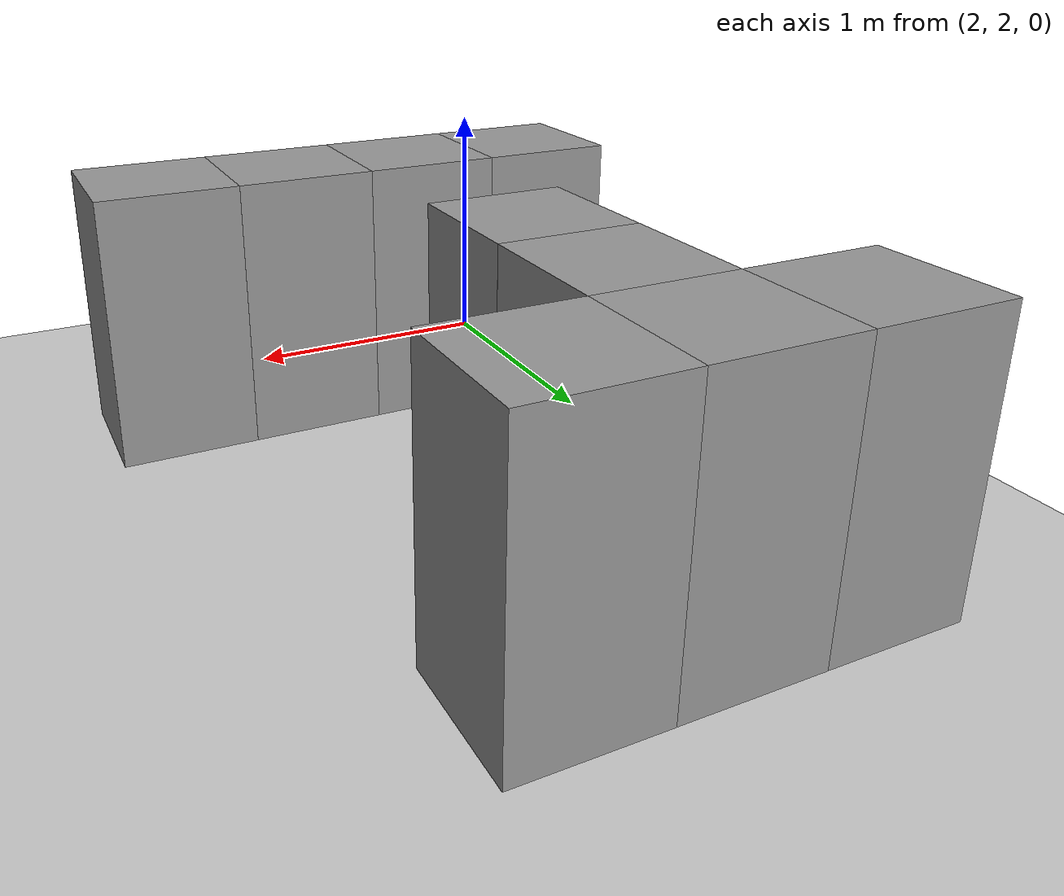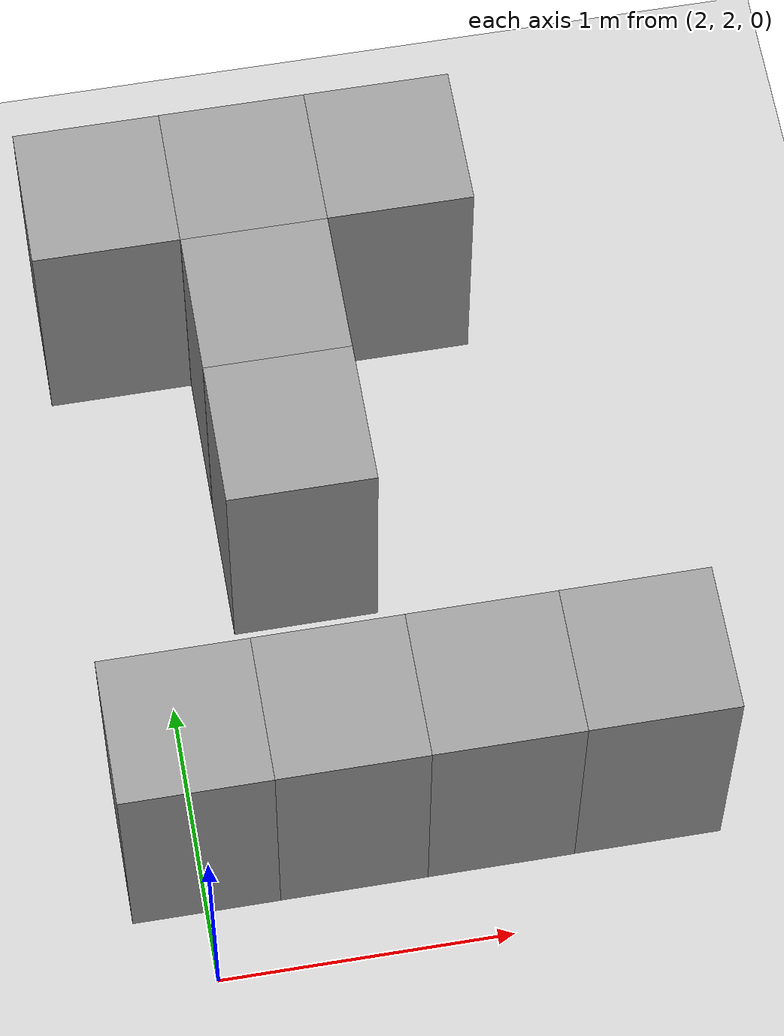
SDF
<sdf version="1.7">
 <world name="default">
  <model name="ground_plane">
   <static>1</static>
   <link name="link">
    <collision name="collision">
     <geometry><plane><normal>0 0 1</normal><size>100 100</size></plane></geometry>
     <surface>
      <contact><collide_bitmask>65535</collide_bitmask></contact>
      <friction><ode><mu>100</mu><mu2>50</mu2></ode></friction>
     </surface>
    </collision>
    <visual name="visual">
     <cast_shadows>0</cast_shadows>
     <geometry><plane><normal>0 0 1</normal><size>100 100</size></plane></geometry>
     <material>
      <script><uri>file://media/materials/scripts/gazebo.material</uri><name>Gazebo/Grey</name></script>
     </material>
    </visual>
   </link>
  </model>
  <model name="unit_box_42">
   <pose>2.0 2.5 0.5 0 -1e-05 -0.000818</pose>
   <link name="link">
    <inertial>
     <mass>1</mass>
     <inertia>
      <ixx>0.166667</ixx>
      <ixy>0</ixy>
      <ixz>0</ixz>
      <iyy>0.166667</iyy>
      <iyz>0</iyz>
      <izz>0.166667</izz>
     </inertia>
    </inertial>
    <collision name="collision"><geometry><box><size>0.5 0.5 1</size></box></geometry></collision>
    <visual name="visual">
     <geometry><box><size>0.5 0.5 1</size></box></geometry>
     <material>
      <script><name>Gazebo/Grey</name><uri>file://media/materials/scripts/gazebo.material</uri></script>
     </material>
    </visual>
   </link>
  </model>
  <model name="unit_box_43">
   <pose>2.5 2.5 0.5 0 -1e-05 -0.000818</pose>
   <link name="link">
    <inertial>
     <mass>1</mass>
     <inertia>
      <ixx>0.166667</ixx>
      <ixy>0</ixy>
      <ixz>0</ixz>
      <iyy>0.166667</iyy>
      <iyz>0</iyz>
      <izz>0.166667</izz>
     </inertia>
    </inertial>
    <collision name="collision"><geometry><box><size>0.5 0.5 1</size></box></geometry></collision>
    <visual name="visual">
     <geometry><box><size>0.5 0.5 1</size></box></geometry>
     <material>
      <script><name>Gazebo/Grey</name><uri>file://media/materials/scripts/gazebo.material</uri></script>
     </material>
    </visual>
   </link>
  </model>
  <model name="unit_box_44">
   <pose>3.0 2.5 0.5 0 -1e-05 -0.000818</pose>
   <link name="link">
    <inertial>
     <mass>1</mass>
     <inertia>
      <ixx>0.166667</ixx>
      <ixy>0</ixy>
      <ixz>0</ixz>
      <iyy>0.166667</iyy>
      <iyz>0</iyz>
      <izz>0.166667</izz>
     </inertia>
    </inertial>
    <collision name="collision"><geometry><box><size>0.5 0.5 1</size></box></geometry></collision>
    <visual name="visual">
     <geometry><box><size>0.5 0.5 1</size></box></geometry>
     <material>
      <script><name>Gazebo/Grey</name><uri>file://media/materials/scripts/gazebo.material</uri></script>
     </material>
    </visual>
   </link>
  </model>
  <model name="unit_box_45">
   <pose>3.5 2.5 0.5 0 -1e-05 -0.000818</pose>
   <link name="link">
    <inertial>
     <mass>1</mass>
     <inertia>
      <ixx>0.166667</ixx>
      <ixy>0</ixy>
      <ixz>0</ixz>
      <iyy>0.166667</iyy>
      <iyz>0</iyz>
      <izz>0.166667</izz>
     </inertia>
    </inertial>
    <collision name="collision"><geometry><box><size>0.5 0.5 1</size></box></geometry></collision>
    <visual name="visual">
     <geometry><box><size>0.5 0.5 1</size></box></geometry>
     <material>
      <script><name>Gazebo/Grey</name><uri>file://media/materials/scripts/gazebo.material</uri></script>
     </material>
    </visual>
   </link>
  </model>
  <model name="unit_box_55">
   <pose>2.5 3.5 0.5 0 -1e-05 -0.000818</pose>
   <link name="link">
    <inertial>
     <mass>1</mass>
     <inertia>
      <ixx>0.166667</ixx>
      <ixy>0</ixy>
      <ixz>0</ixz>
      <iyy>0.166667</iyy>
      <iyz>0</iyz>
      <izz>0.166667</izz>
     </inertia>
    </inertial>
    <collision name="collision"><geometry><box><size>0.5 0.5 1</size></box></geometry></collision>
    <visual name="visual">
     <geometry><box><size>0.5 0.5 1</size></box></geometry>
     <material>
      <script><name>Gazebo/Grey</name><uri>file://media/materials/scripts/gazebo.material</uri></script>
     </material>
    </visual>
   </link>
  </model>
  <model name="unit_box_59">
   <pose>2.5 4.0 0.5 0 -1e-05 -0.000818</pose>
   <link name="link">
    <inertial>
     <mass>1</mass>
     <inertia>
      <ixx>0.166667</ixx>
      <ixy>0</ixy>
      <ixz>0</ixz>
      <iyy>0.166667</iyy>
      <iyz>0</iyz>
      <izz>0.166667</izz>
     </inertia>
    </inertial>
    <collision name="collision"><geometry><box><size>0.5 0.5 1</size></box></geometry></collision>
    <visual name="visual">
     <geometry><box><size>0.5 0.5 1</size></box></geometry>
     <material>
      <script><name>Gazebo/Grey</name><uri>file://media/materials/scripts/gazebo.material</uri></script>
     </material>
    </visual>
   </link>
  </model>
  <model name="unit_box_66">
   <pose>2.0 4.5 0.5 0 -1e-05 -0.000818</pose>
   <link name="link">
    <inertial>
     <mass>1</mass>
     <inertia>
      <ixx>0.166667</ixx>
      <ixy>0</ixy>
      <ixz>0</ixz>
      <iyy>0.166667</iyy>
      <iyz>0</iyz>
      <izz>0.166667</izz>
     </inertia>
    </inertial>
    <collision name="collision"><geometry><box><size>0.5 0.5 1</size></box></geometry></collision>
    <visual name="visual">
     <geometry><box><size>0.5 0.5 1</size></box></geometry>
     <material>
      <script><name>Gazebo/Grey</name><uri>file://media/materials/scripts/gazebo.material</uri></script>
     </material>
    </visual>
   </link>
  </model>
  <model name="unit_box_67">
   <pose>2.5 4.5 0.5 0 -1e-05 -0.000818</pose>
   <link name="link">
    <inertial>
     <mass>1</mass>
     <inertia>
      <ixx>0.166667</ixx>
      <ixy>0</ixy>
      <ixz>0</ixz>
      <iyy>0.166667</iyy>
      <iyz>0</iyz>
      <izz>0.166667</izz>
     </inertia>
    </inertial>
    <collision name="collision"><geometry><box><size>0.5 0.5 1</size></box></geometry></collision>
    <visual name="visual">
     <geometry><box><size>0.5 0.5 1</size></box></geometry>
     <material>
      <script><name>Gazebo/Grey</name><uri>file://media/materials/scripts/gazebo.material</uri></script>
     </material>
    </visual>
   </link>
  </model>
  <model name="unit_box_68">
   <pose>3.0 4.5 0.5 0 -1e-05 -0.000818</pose>
   <link name="link">
    <inertial>
     <mass>1</mass>
     <inertia>
      <ixx>0.166667</ixx>
      <ixy>0</ixy>
      <ixz>0</ixz>
      <iyy>0.166667</iyy>
      <iyz>0</iyz>
      <izz>0.166667</izz>
     </inertia>
    </inertial>
    <collision name="collision"><geometry><box><size>0.5 0.5 1</size></box></geometry></collision>
    <visual name="visual">
     <geometry><box><size>0.5 0.5 1</size></box></geometry>
     <material>
      <script><name>Gazebo/Grey</name><uri>file://media/materials/scripts/gazebo.material</uri></script>
     </material>
    </visual>
   </link>
  </model>
 </world>
</sdf>
